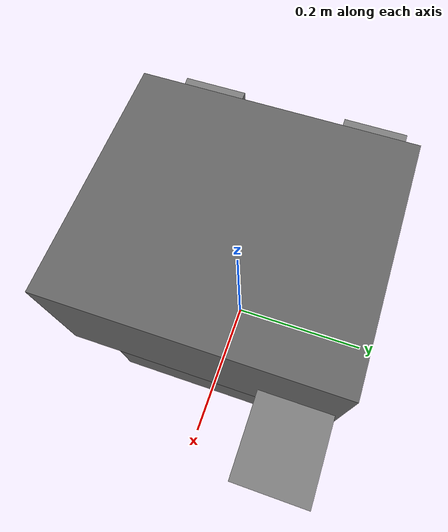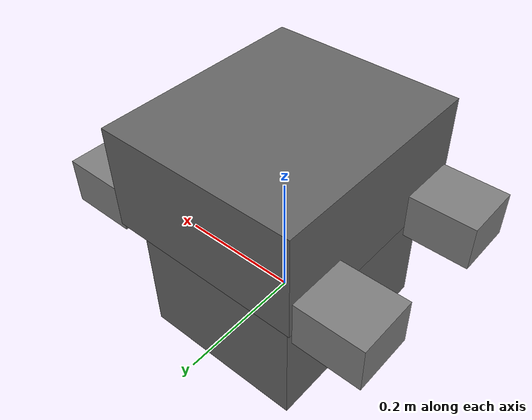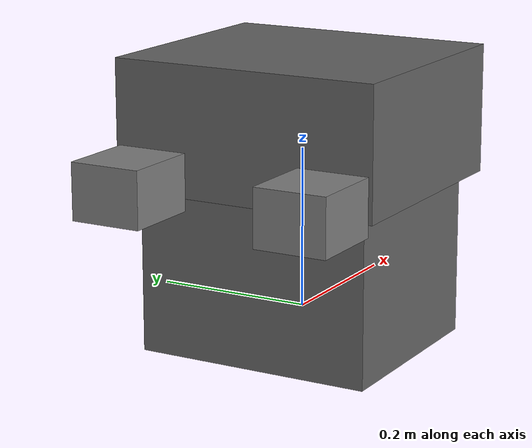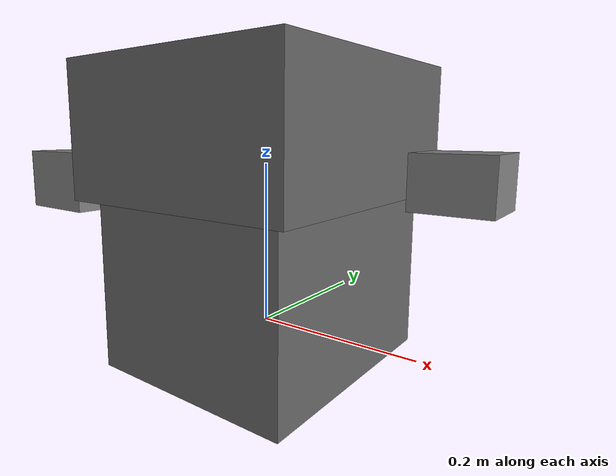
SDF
<sdf version="1.6">
    <model name="car_engine2">
        <allow_auto_disable>true</allow_auto_disable>
        <link name="body2">
            <kinematic>true</kinematic>
            <pose>0 0 0.06 0 0 0 0</pose>
            <visual name="visual">
                <geometry>
                    <box>
                        <size>0.26 0.30 0.21</size>
                    </box>
                </geometry>
                <material>
                    <ambient>0.4 0.4 0.4 1.0</ambient>
                    <diffuse>0.4 0.4 0.4 1.0</diffuse>
                </material>
            </visual>
            <collision name="collision">
                <geometry>
                    <box>
                        <size>0.26 0.30 0.21</size>
                    </box>
                </geometry>
            </collision>
        </link>
        <link name="body">
            <kinematic>true</kinematic>
            <pose>0 0 0.24 0 0 0 0</pose>
            <visual name="visual">
                <geometry>
                    <box>
                        <size>0.30 0.34 0.16</size>
                    </box>
                </geometry>
                <material>
                    <ambient>0.4 0.4 0.4 1.0</ambient>
                    <diffuse>0.4 0.4 0.4 1.0</diffuse>
                </material>
            </visual>
            <collision name="collision">
                <geometry>
                    <box>
                        <size>0.30 0.34 0.16</size>
                    </box>
                </geometry>
                <surface>
                    <friction>
                        <ode>
                            <mu>10.00</mu>
                            <mu2>10.00</mu2>
                        </ode>
                    </friction>
                    <contact>
                        <ode>
                            <kp>1e15</kp>
                            <kd>1e11</kd>
                        </ode>
                    </contact>
                </surface>
            </collision>
        </link>
        <link name="lift_tab1">
            <kinematic>true</kinematic>
            <pose>0.20 0.12 0.18 0 0 0 0</pose>
            <visual name="visual">
                <geometry>
                    <box>
                        <size>0.1 0.09 0.07</size>
                    </box>
                </geometry>
                <material>
                    <ambient>0.5 0.5 0.5 1.0</ambient>
                    <diffuse>0.5 0.5 0.5 1.0</diffuse>
                </material>
            </visual>
            <collision name="collision">
                <geometry>
                    <box>
                        <size>0.1 0.09 0.07</size>
                    </box>
                </geometry>
            </collision>
        </link>
        <link name="lift_tab3">
            <kinematic>true</kinematic>
            <pose>-0.20 0.12 0.18 0 0 0 0</pose>
            <visual name="visual">
                <geometry>
                    <box>
                        <size>0.1 0.09 0.07</size>
                    </box>
                </geometry>
                <material>
                    <ambient>0.5 0.5 0.5 1.0</ambient>
                    <diffuse>0.5 0.5 0.5 1.0</diffuse>
                </material>
            </visual>
            <collision name="collision">
                <geometry>
                    <box>
                        <size>0.1 0.09 0.07</size>
                    </box>
                </geometry>
            </collision>
        </link>
        <link name="lift_tab4">
            <kinematic>true</kinematic>
            <pose>-0.20 -0.12 0.18 0 0 0 0</pose>
            <visual name="visual">
                <geometry>
                    <box>
                        <size>0.1 0.09 0.07</size>
                    </box>
                </geometry>
                <material>
                    <ambient>0.5 0.5 0.5 1.0</ambient>
                    <diffuse>0.5 0.5 0.5 1.0</diffuse>
                </material>
            </visual>
            <collision name="collision">
                <geometry>
                    <box>
                        <size>0.1 0.09 0.07</size>
                    </box>
                </geometry>
            </collision>
        </link>
    </model>
</sdf>
